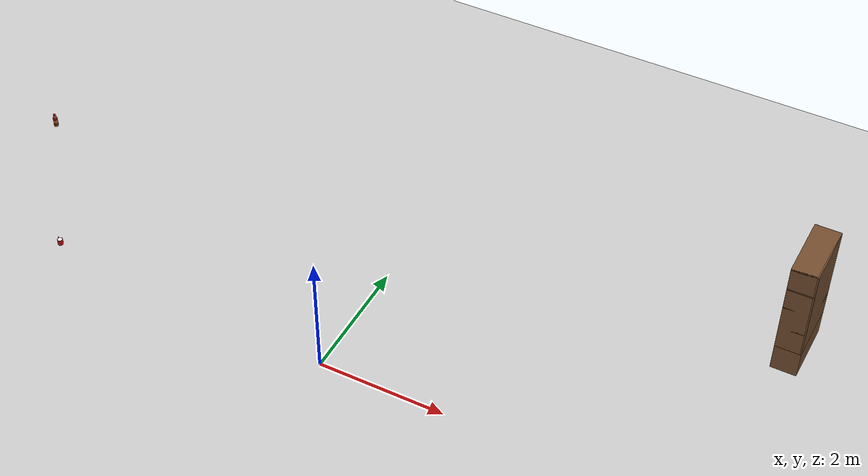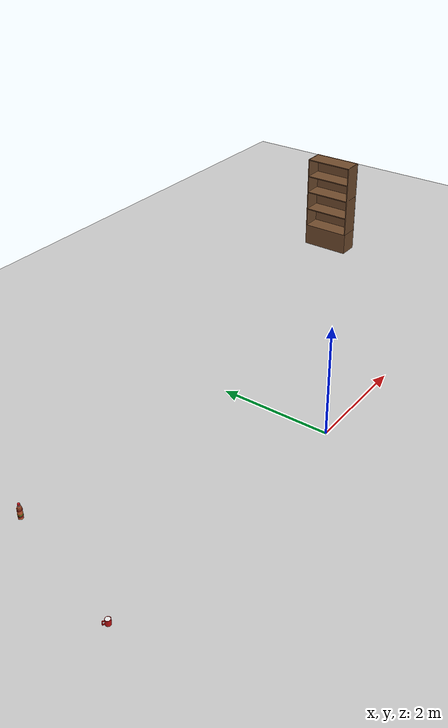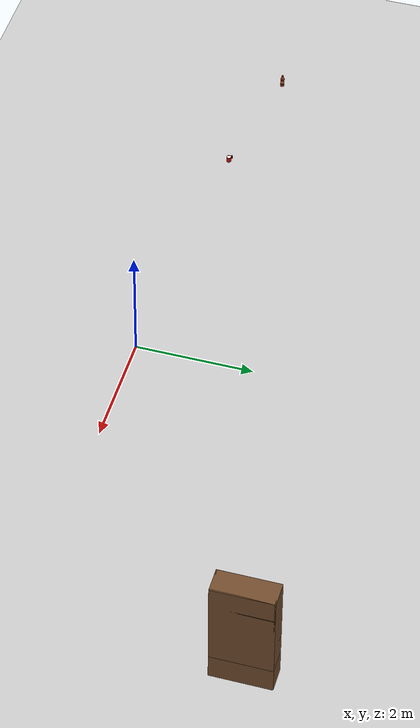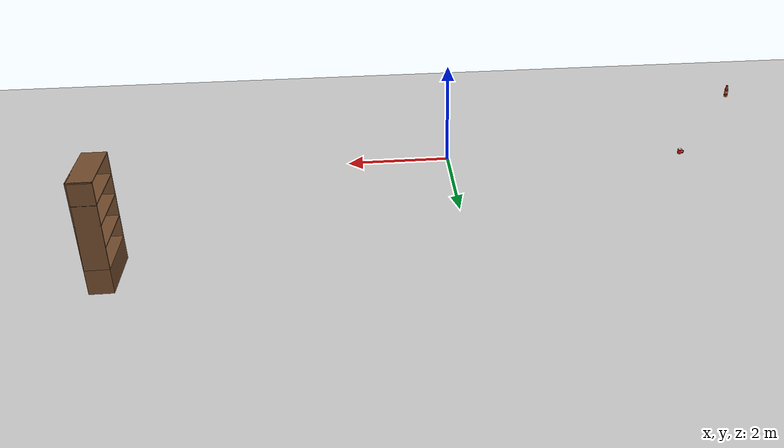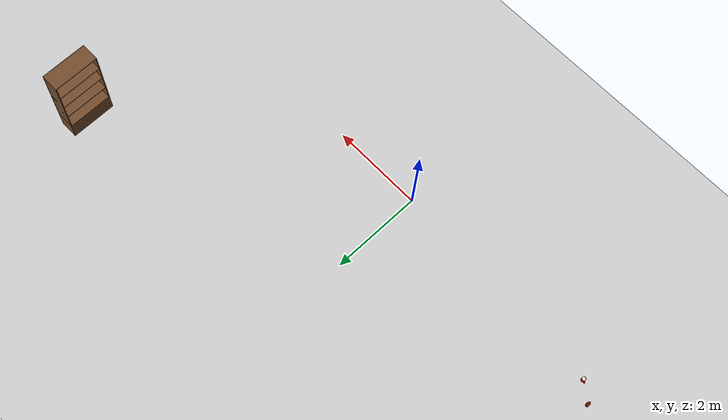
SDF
<sdf version="1.6">
 <world name="robocup_casa">
  <include><uri>model://sun</uri></include>
  <include><uri>model://ground_plane</uri></include>
  <model name="bookshelf">
   <static>true</static>
   <link name="l0">
    <pose>5.950 3.500 0.225 0 0 0.0000</pose>
    <collision name="c"><geometry><box><size>0.400 1.000 0.450</size></box></geometry></collision>
    <visual name="v">
     <geometry><box><size>0.400 1.000 0.450</size></box></geometry>
     <material><ambient>0.45 0.30 0.18 1</ambient><diffuse>0.45 0.30 0.18 1</diffuse></material>
    </visual>
   </link>
   <link name="l1">
    <pose>6.140 3.500 1.225 0 0 0.0000</pose>
    <collision name="c"><geometry><box><size>0.020 1.000 1.550</size></box></geometry></collision>
    <visual name="v">
     <geometry><box><size>0.020 1.000 1.550</size></box></geometry>
     <material><ambient>0.45 0.30 0.18 1</ambient><diffuse>0.45 0.30 0.18 1</diffuse></material>
    </visual>
   </link>
   <link name="l2">
    <pose>5.950 3.010 1.225 0 0 0.0000</pose>
    <collision name="c"><geometry><box><size>0.400 0.020 1.550</size></box></geometry></collision>
    <visual name="v">
     <geometry><box><size>0.400 0.020 1.550</size></box></geometry>
     <material><ambient>0.45 0.30 0.18 1</ambient><diffuse>0.45 0.30 0.18 1</diffuse></material>
    </visual>
   </link>
   <link name="l3">
    <pose>5.950 3.990 1.225 0 0 0.0000</pose>
    <collision name="c"><geometry><box><size>0.400 0.020 1.550</size></box></geometry></collision>
    <visual name="v">
     <geometry><box><size>0.400 0.020 1.550</size></box></geometry>
     <material><ambient>0.45 0.30 0.18 1</ambient><diffuse>0.45 0.30 0.18 1</diffuse></material>
    </visual>
   </link>
   <link name="l4">
    <pose>5.950 3.500 0.840 0 0 0.0000</pose>
    <collision name="c"><geometry><box><size>0.400 1.000 0.020</size></box></geometry></collision>
    <visual name="v">
     <geometry><box><size>0.400 1.000 0.020</size></box></geometry>
     <material><ambient>0.45 0.30 0.18 1</ambient><diffuse>0.45 0.30 0.18 1</diffuse></material>
    </visual>
   </link>
   <link name="l5">
    <pose>5.950 3.500 1.240 0 0 0.0000</pose>
    <collision name="c"><geometry><box><size>0.400 1.000 0.020</size></box></geometry></collision>
    <visual name="v">
     <geometry><box><size>0.400 1.000 0.020</size></box></geometry>
     <material><ambient>0.45 0.30 0.18 1</ambient><diffuse>0.45 0.30 0.18 1</diffuse></material>
    </visual>
   </link>
   <link name="l6">
    <pose>5.950 3.500 1.610 0 0 0.0000</pose>
    <collision name="c"><geometry><box><size>0.400 1.000 0.020</size></box></geometry></collision>
    <visual name="v">
     <geometry><box><size>0.400 1.000 0.020</size></box></geometry>
     <material><ambient>0.45 0.30 0.18 1</ambient><diffuse>0.45 0.30 0.18 1</diffuse></material>
    </visual>
   </link>
   <link name="l7">
    <pose>5.950 3.500 1.990 0 0 0.0000</pose>
    <collision name="c"><geometry><box><size>0.400 1.000 0.020</size></box></geometry></collision>
    <visual name="v">
     <geometry><box><size>0.400 1.000 0.020</size></box></geometry>
     <material><ambient>0.45 0.30 0.18 1</ambient><diffuse>0.45 0.30 0.18 1</diffuse></material>
    </visual>
   </link>
  </model>
  <model name="botella_estante">
   <pose>-5.200 1.072 1.621 0 0 -1.571</pose>
   <link name="link">
    <inertial>
     <pose>0 0 0.1100 0 0 0</pose>
     <mass>0.55</mass>
     <inertia>
      <ixx>2.368e-03</ixx>
      <iyy>2.368e-03</iyy>
      <izz>2.995e-04</izz>
      <ixy>0</ixy>
      <ixz>0</ixz>
      <iyz>0</iyz>
     </inertia>
    </inertial>
    <collision name="c">
     <pose>0 0 0.1100 0 0 0</pose>
     <geometry><cylinder><radius>0.0330</radius><length>0.2200</length></cylinder></geometry>
     <surface><friction><ode><mu>1.0</mu><mu2>1.0</mu2></ode></friction></surface>
    </collision>
    <visual name="v0">
     <pose>0 0 0.075 0 0 0</pose>
     <geometry><cylinder><radius>0.0330</radius><length>0.1500</length></cylinder></geometry>
     <material><ambient>0.86 0.40 0.22 1</ambient><diffuse>0.86 0.40 0.22 1</diffuse></material>
    </visual>
    <visual name="v1">
     <pose>0 0 0.16 0 0 0</pose>
     <geometry><cylinder><radius>0.0270</radius><length>0.0200</length></cylinder></geometry>
     <material><ambient>0.86 0.40 0.22 1</ambient><diffuse>0.86 0.40 0.22 1</diffuse></material>
    </visual>
    <visual name="v2">
     <pose>0 0 0.182 0 0 0</pose>
     <geometry><cylinder><radius>0.0150</radius><length>0.0250</length></cylinder></geometry>
     <transparency>0.4</transparency>
     <material><ambient>0.75 0.78 0.80 1</ambient><diffuse>0.75 0.78 0.80 1</diffuse></material>
    </visual>
    <visual name="v3">
     <pose>0 0 0.192 0 0 0</pose>
     <geometry><cylinder><radius>0.0190</radius><length>0.0040</length></cylinder></geometry>
     <transparency>0.2</transparency>
     <material><ambient>0.75 0.78 0.80 1</ambient><diffuse>0.75 0.78 0.80 1</diffuse></material>
    </visual>
    <visual name="v4">
     <pose>0 0 0.2075 0 0 0</pose>
     <geometry><cylinder><radius>0.0160</radius><length>0.0250</length></cylinder></geometry>
     <material><ambient>0.80 0.10 0.12 1</ambient><diffuse>0.80 0.10 0.12 1</diffuse></material>
    </visual>
    <visual name="v5">
     <pose>0 0 0.13 0 0 0</pose>
     <geometry><cylinder><radius>0.0340</radius><length>0.0120</length></cylinder></geometry>
     <material><ambient>0.80 0.10 0.12 1</ambient><diffuse>0.80 0.10 0.12 1</diffuse></material>
    </visual>
    <visual name="v6">
     <pose>0 0 0.0625 0 0 0</pose>
     <geometry><cylinder><radius>0.0340</radius><length>0.0150</length></cylinder></geometry>
     <material><ambient>0.85 0.75 0.20 1</ambient><diffuse>0.85 0.75 0.20 1</diffuse></material>
    </visual>
    <visual name="v7">
     <pose>0 0 0.05 0 0 0</pose>
     <geometry><cylinder><radius>0.0340</radius><length>0.0100</length></cylinder></geometry>
     <material><ambient>0.30 0.60 0.25 1</ambient><diffuse>0.30 0.60 0.25 1</diffuse></material>
    </visual>
    <visual name="v8">
     <pose>0 0 0.0375 0 0 0</pose>
     <geometry><cylinder><radius>0.0340</radius><length>0.0150</length></cylinder></geometry>
     <material><ambient>0.80 0.10 0.12 1</ambient><diffuse>0.80 0.10 0.12 1</diffuse></material>
    </visual>
   </link>
  </model>
  <model name="taza_suelo">
   <pose>-4.812 0.242 0.001 0 0 2.571</pose>
   <link name="link">
    <inertial>
     <pose>0 0 0.0475 0 0 0</pose>
     <mass>0.3</mass>
     <inertia>
      <ixx>3.643e-04</ixx>
      <iyy>3.643e-04</iyy>
      <izz>2.773e-04</izz>
      <ixy>0</ixy>
      <ixz>0</ixz>
      <iyz>0</iyz>
     </inertia>
    </inertial>
    <collision name="c">
     <pose>0 0 0.0475 0 0 0</pose>
     <geometry><cylinder><radius>0.0430</radius><length>0.0950</length></cylinder></geometry>
     <surface><friction><ode><mu>1.0</mu><mu2>1.0</mu2></ode></friction></surface>
    </collision>
    <visual name="v0">
     <pose>0 0 0.0475 0 0 0</pose>
     <geometry><cylinder><radius>0.0430</radius><length>0.0950</length></cylinder></geometry>
     <material><ambient>0.82 0.08 0.08 1</ambient><diffuse>0.82 0.08 0.08 1</diffuse></material>
    </visual>
    <visual name="v1">
     <pose>0 0 0.0945 0 0 0</pose>
     <geometry><cylinder><radius>0.0370</radius><length>0.0020</length></cylinder></geometry>
     <material><ambient>0.95 0.95 0.95 1</ambient><diffuse>0.95 0.95 0.95 1</diffuse></material>
    </visual>
    <visual name="v2">
     <pose>0.073 0 0.048 0 0 0</pose>
     <geometry><box><size>0.0120 0.0140 0.0660</size></box></geometry>
     <material><ambient>0.82 0.08 0.08 1</ambient><diffuse>0.82 0.08 0.08 1</diffuse></material>
    </visual>
    <visual name="v3">
     <pose>0.058 0 0.075 0 0 0</pose>
     <geometry><box><size>0.0320 0.0140 0.0120</size></box></geometry>
     <material><ambient>0.82 0.08 0.08 1</ambient><diffuse>0.82 0.08 0.08 1</diffuse></material>
    </visual>
    <visual name="v4">
     <pose>0.058 0 0.021 0 0 0</pose>
     <geometry><box><size>0.0320 0.0140 0.0120</size></box></geometry>
     <material><ambient>0.82 0.08 0.08 1</ambient><diffuse>0.82 0.08 0.08 1</diffuse></material>
    </visual>
   </link>
  </model>
 </world>
</sdf>
